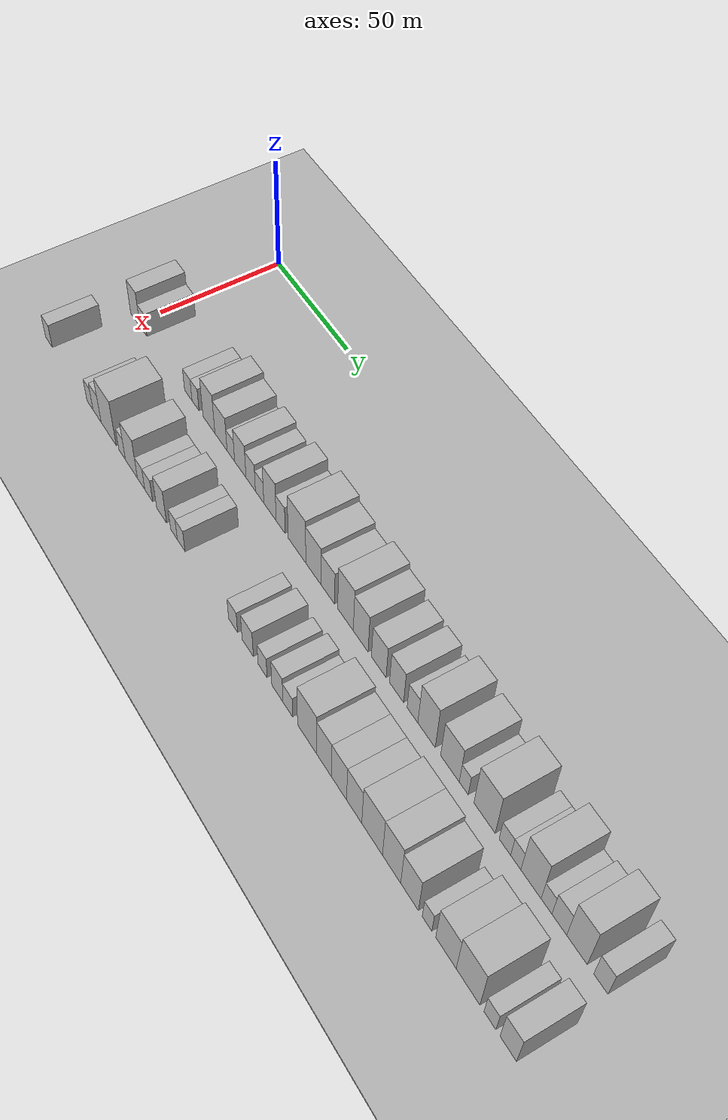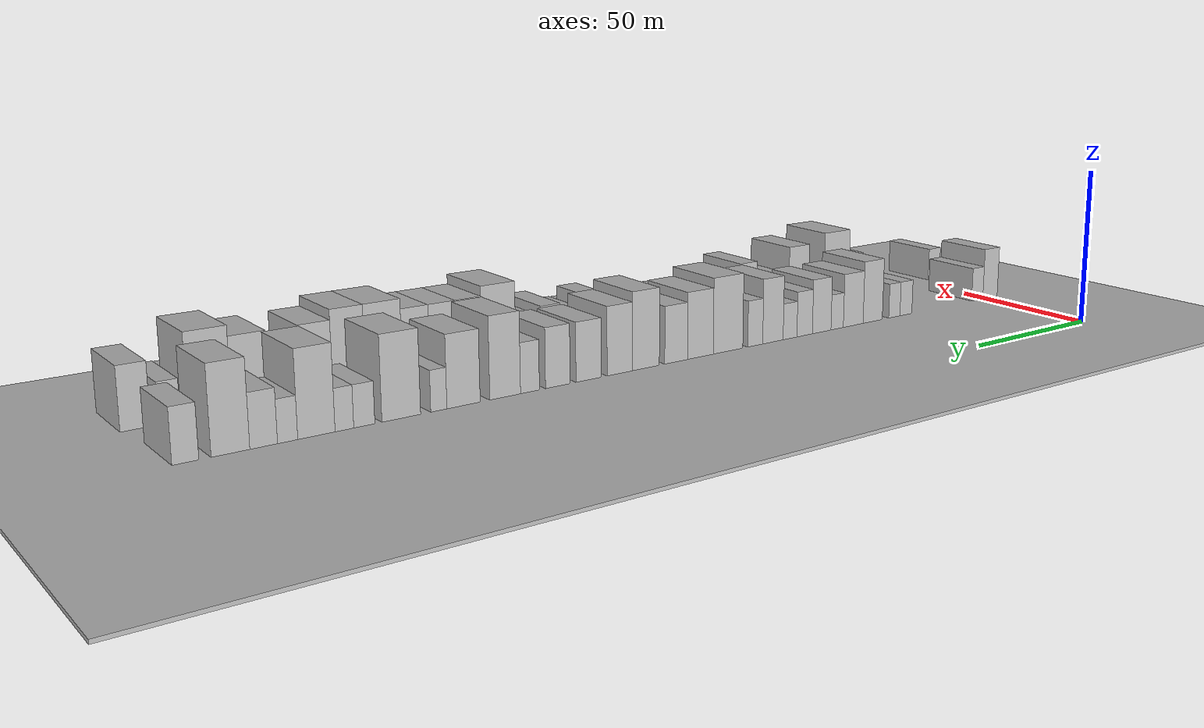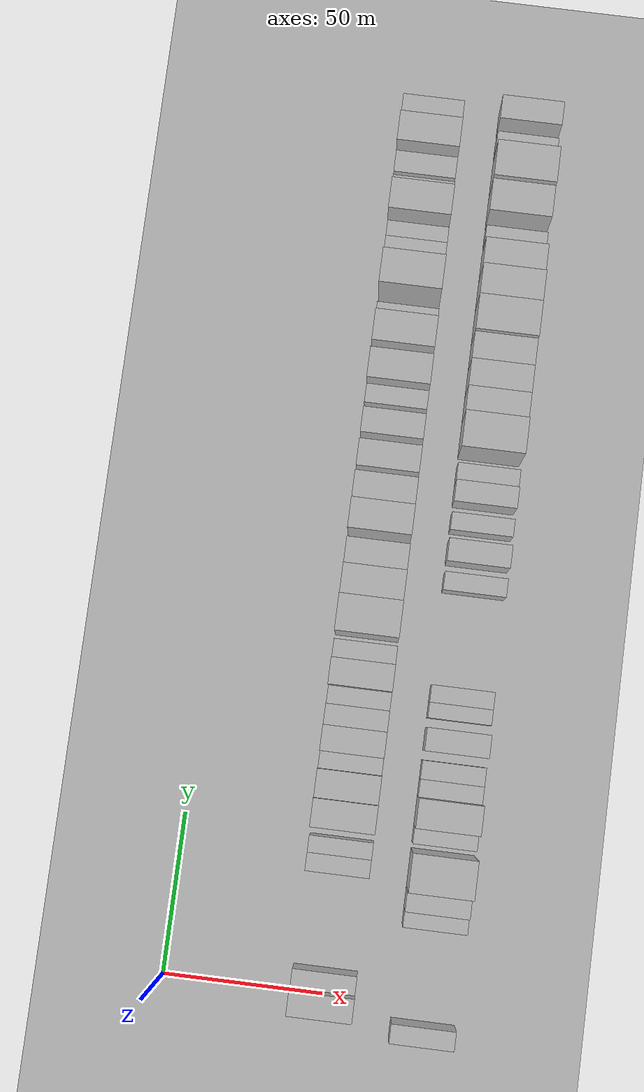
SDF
<sdf version="1.6">
 <world name="default">
  <include><name>ground_plane_1</name><uri>model://HANNAS_ground_plane</uri></include>
  <include>
   <name>ground_plane_2</name>
   <uri>model://HANNAS_ground_plane</uri>
   <pose>100 0 0  0 0 0</pose>
  </include>
  <model name="building_33">
   <static>1</static>
   <pose>50.0000 -1.3900 0 0.000000 0.000000 0.000000</pose>
   <link name="link">
    <pose>0 0 9.00 0 0 0</pose>
    <collision name="collision"><geometry><box><size>20.0000 7.4931 18.0000</size></box></geometry></collision>
    <visual name="visual">
     <cast_shadows>0</cast_shadows>
     <geometry><box><size>20.0000 7.4931 18.0000</size></box></geometry>
     <material>
      <script>
       <uri>model://HANNAS_wall/materials/scripts</uri>
       <uri>model://HANNAS_wall/materials/textures</uri>
       <name>vrc/HANNAS_wall</name>
      </script>
     </material>
    </visual>
   </link>
  </model>
  <model name="building_34">
   <static>1</static>
   <pose>50.0000 5.2241 0 0.000000 0.000000 0.000000</pose>
   <link name="link">
    <pose>0 0 6.00 0 0 0</pose>
    <collision name="collision"><geometry><box><size>20.0000 5.7352 12.0000</size></box></geometry></collision>
    <visual name="visual">
     <cast_shadows>0</cast_shadows>
     <geometry><box><size>20.0000 5.7352 12.0000</size></box></geometry>
     <material>
      <script>
       <uri>model://HANNAS_wall/materials/scripts</uri>
       <uri>model://HANNAS_wall/materials/textures</uri>
       <name>vrc/HANNAS_wall</name>
      </script>
     </material>
    </visual>
   </link>
  </model>
  <model name="building_35">
   <static>1</static>
   <pose>50.0000 40.5400 0 0.000000 0.000000 0.000000</pose>
   <link name="link">
    <pose>0 0 6.00 0 0 0</pose>
    <collision name="collision"><geometry><box><size>20.0000 5.6322 12.0000</size></box></geometry></collision>
    <visual name="visual">
     <cast_shadows>0</cast_shadows>
     <geometry><box><size>20.0000 5.6322 12.0000</size></box></geometry>
     <material>
      <script>
       <uri>model://HANNAS_wall/materials/scripts</uri>
       <uri>model://HANNAS_wall/materials/textures</uri>
       <name>vrc/HANNAS_wall</name>
      </script>
     </material>
    </visual>
   </link>
  </model>
  <model name="building_36">
   <static>1</static>
   <pose>50.0000 45.9921 0 0.000000 0.000000 0.000000</pose>
   <link name="link">
    <pose>0 0 6.00 0 0 0</pose>
    <collision name="collision"><geometry><box><size>20.0000 5.2721 12.0000</size></box></geometry></collision>
    <visual name="visual">
     <cast_shadows>0</cast_shadows>
     <geometry><box><size>20.0000 5.2721 12.0000</size></box></geometry>
     <material>
      <script>
       <uri>model://HANNAS_wall/materials/scripts</uri>
       <uri>model://HANNAS_wall/materials/textures</uri>
       <name>vrc/HANNAS_wall</name>
      </script>
     </material>
    </visual>
   </link>
  </model>
  <model name="building_37">
   <static>1</static>
   <pose>50.0000 56.0227 0 0.000000 0.000000 0.000000</pose>
   <link name="link">
    <pose>0 0 10.50 0 0 0</pose>
    <collision name="collision"><geometry><box><size>20.0000 8.7891 21.0000</size></box></geometry></collision>
    <visual name="visual">
     <cast_shadows>0</cast_shadows>
     <geometry><box><size>20.0000 8.7891 21.0000</size></box></geometry>
     <material>
      <script>
       <uri>model://HANNAS_wall/materials/scripts</uri>
       <uri>model://HANNAS_wall/materials/textures</uri>
       <name>vrc/HANNAS_wall</name>
      </script>
     </material>
    </visual>
   </link>
  </model>
  <model name="building_38">
   <static>1</static>
   <pose>50.0000 64.8491 0 0.000000 0.000000 0.000000</pose>
   <link name="link">
    <pose>0 0 9.00 0 0 0</pose>
    <collision name="collision"><geometry><box><size>20.0000 8.8636 18.0000</size></box></geometry></collision>
    <visual name="visual">
     <cast_shadows>0</cast_shadows>
     <geometry><box><size>20.0000 8.8636 18.0000</size></box></geometry>
     <material>
      <script>
       <uri>model://HANNAS_wall/materials/scripts</uri>
       <uri>model://HANNAS_wall/materials/textures</uri>
       <name>vrc/HANNAS_wall</name>
      </script>
     </material>
    </visual>
   </link>
  </model>
  <model name="building_39">
   <static>1</static>
   <pose>50.0000 71.9994 0 0.000000 0.000000 0.000000</pose>
   <link name="link">
    <pose>0 0 6.00 0 0 0</pose>
    <collision name="collision"><geometry><box><size>20.0000 5.4370 12.0000</size></box></geometry></collision>
    <visual name="visual">
     <cast_shadows>0</cast_shadows>
     <geometry><box><size>20.0000 5.4370 12.0000</size></box></geometry>
     <material>
      <script>
       <uri>model://HANNAS_wall/materials/scripts</uri>
       <uri>model://HANNAS_wall/materials/textures</uri>
       <name>vrc/HANNAS_wall</name>
      </script>
     </material>
    </visual>
   </link>
  </model>
  <model name="building_40">
   <static>1</static>
   <pose>50.0000 78.7575 0 0.000000 0.000000 0.000000</pose>
   <link name="link">
    <pose>0 0 9.00 0 0 0</pose>
    <collision name="collision"><geometry><box><size>20.0000 8.0791 18.0000</size></box></geometry></collision>
    <visual name="visual">
     <cast_shadows>0</cast_shadows>
     <geometry><box><size>20.0000 8.0791 18.0000</size></box></geometry>
     <material>
      <script>
       <uri>model://HANNAS_wall/materials/scripts</uri>
       <uri>model://HANNAS_wall/materials/textures</uri>
       <name>vrc/HANNAS_wall</name>
      </script>
     </material>
    </visual>
   </link>
  </model>
  <model name="building_41">
   <static>1</static>
   <pose>50.0000 86.0763 0 0.000000 0.000000 0.000000</pose>
   <link name="link">
    <pose>0 0 7.50 0 0 0</pose>
    <collision name="collision"><geometry><box><size>20.0000 6.5585 15.0000</size></box></geometry></collision>
    <visual name="visual">
     <cast_shadows>0</cast_shadows>
     <geometry><box><size>20.0000 6.5585 15.0000</size></box></geometry>
     <material>
      <script>
       <uri>model://HANNAS_wall/materials/scripts</uri>
       <uri>model://HANNAS_wall/materials/textures</uri>
       <name>vrc/HANNAS_wall</name>
      </script>
     </material>
    </visual>
   </link>
  </model>
  <model name="building_42">
   <static>1</static>
   <pose>50.0000 92.2538 0 0.000000 0.000000 0.000000</pose>
   <link name="link">
    <pose>0 0 6.00 0 0 0</pose>
    <collision name="collision"><geometry><box><size>20.0000 5.7967 12.0000</size></box></geometry></collision>
    <visual name="visual">
     <cast_shadows>0</cast_shadows>
     <geometry><box><size>20.0000 5.7967 12.0000</size></box></geometry>
     <material>
      <script>
       <uri>model://HANNAS_wall/materials/scripts</uri>
       <uri>model://HANNAS_wall/materials/textures</uri>
       <name>vrc/HANNAS_wall</name>
      </script>
     </material>
    </visual>
   </link>
  </model>
  <model name="building_43">
   <static>1</static>
   <pose>50.0000 99.3555 0 0.000000 0.000000 0.000000</pose>
   <link name="link">
    <pose>0 0 10.50 0 0 0</pose>
    <collision name="collision"><geometry><box><size>20.0000 8.4067 21.0000</size></box></geometry></collision>
    <visual name="visual">
     <cast_shadows>0</cast_shadows>
     <geometry><box><size>20.0000 8.4067 21.0000</size></box></geometry>
     <material>
      <script>
       <uri>model://HANNAS_wall/materials/scripts</uri>
       <uri>model://HANNAS_wall/materials/textures</uri>
       <name>vrc/HANNAS_wall</name>
      </script>
     </material>
    </visual>
   </link>
  </model>
  <model name="building_44">
   <static>1</static>
   <pose>50.0000 106.5774 0 0.000000 0.000000 0.000000</pose>
   <link name="link">
    <pose>0 0 7.50 0 0 0</pose>
    <collision name="collision"><geometry><box><size>20.0000 6.0372 15.0000</size></box></geometry></collision>
    <visual name="visual">
     <cast_shadows>0</cast_shadows>
     <geometry><box><size>20.0000 6.0372 15.0000</size></box></geometry>
     <material>
      <script>
       <uri>model://HANNAS_wall/materials/scripts</uri>
       <uri>model://HANNAS_wall/materials/textures</uri>
       <name>vrc/HANNAS_wall</name>
      </script>
     </material>
    </visual>
   </link>
  </model>
  <model name="building_45">
   <static>1</static>
   <pose>50.0000 117.4008 0 0.000000 0.000000 0.000000</pose>
   <link name="link">
    <pose>0 0 12.00 0 0 0</pose>
    <collision name="collision"><geometry><box><size>20.0000 11.6096 24.0000</size></box></geometry></collision>
    <visual name="visual">
     <cast_shadows>0</cast_shadows>
     <geometry><box><size>20.0000 11.6096 24.0000</size></box></geometry>
     <material>
      <script>
       <uri>model://HANNAS_wall/materials/scripts</uri>
       <uri>model://HANNAS_wall/materials/textures</uri>
       <name>vrc/HANNAS_wall</name>
      </script>
     </material>
    </visual>
   </link>
  </model>
  <model name="building_46">
   <static>1</static>
   <pose>50.0000 128.1020 0 0.000000 0.000000 0.000000</pose>
   <link name="link">
    <pose>0 0 10.50 0 0 0</pose>
    <collision name="collision"><geometry><box><size>20.0000 9.7929 21.0000</size></box></geometry></collision>
    <visual name="visual">
     <cast_shadows>0</cast_shadows>
     <geometry><box><size>20.0000 9.7929 21.0000</size></box></geometry>
     <material>
      <script>
       <uri>model://HANNAS_wall/materials/scripts</uri>
       <uri>model://HANNAS_wall/materials/textures</uri>
       <name>vrc/HANNAS_wall</name>
      </script>
     </material>
    </visual>
   </link>
  </model>
  <model name="building_47">
   <static>1</static>
   <pose>50.0000 137.2708 0 0.000000 0.000000 0.000000</pose>
   <link name="link">
    <pose>0 0 9.00 0 0 0</pose>
    <collision name="collision"><geometry><box><size>20.0000 8.5446 18.0000</size></box></geometry></collision>
    <visual name="visual">
     <cast_shadows>0</cast_shadows>
     <geometry><box><size>20.0000 8.5446 18.0000</size></box></geometry>
     <material>
      <script>
       <uri>model://HANNAS_wall/materials/scripts</uri>
       <uri>model://HANNAS_wall/materials/textures</uri>
       <name>vrc/HANNAS_wall</name>
      </script>
     </material>
    </visual>
   </link>
  </model>
  <model name="building_48">
   <static>1</static>
   <pose>50.0000 148.3784 0 0.000000 0.000000 0.000000</pose>
   <link name="link">
    <pose>0 0 12.00 0 0 0</pose>
    <collision name="collision"><geometry><box><size>20.0000 9.6707 24.0000</size></box></geometry></collision>
    <visual name="visual">
     <cast_shadows>0</cast_shadows>
     <geometry><box><size>20.0000 9.6707 24.0000</size></box></geometry>
     <material>
      <script>
       <uri>model://HANNAS_wall/materials/scripts</uri>
       <uri>model://HANNAS_wall/materials/textures</uri>
       <name>vrc/HANNAS_wall</name>
      </script>
     </material>
    </visual>
   </link>
  </model>
  <model name="building_49">
   <static>1</static>
   <pose>50.0000 157.7045 0 0.000000 0.000000 0.000000</pose>
   <link name="link">
    <pose>0 0 10.50 0 0 0</pose>
    <collision name="collision"><geometry><box><size>20.0000 8.9815 21.0000</size></box></geometry></collision>
    <visual name="visual">
     <cast_shadows>0</cast_shadows>
     <geometry><box><size>20.0000 8.9815 21.0000</size></box></geometry>
     <material>
      <script>
       <uri>model://HANNAS_wall/materials/scripts</uri>
       <uri>model://HANNAS_wall/materials/textures</uri>
       <name>vrc/HANNAS_wall</name>
      </script>
     </material>
    </visual>
   </link>
  </model>
  <model name="building_50">
   <static>1</static>
   <pose>50.0000 168.5529 0 0.000000 0.000000 0.000000</pose>
   <link name="link">
    <pose>0 0 9.00 0 0 0</pose>
    <collision name="collision"><geometry><box><size>20.0000 8.7153 18.0000</size></box></geometry></collision>
    <visual name="visual">
     <cast_shadows>0</cast_shadows>
     <geometry><box><size>20.0000 8.7153 18.0000</size></box></geometry>
     <material>
      <script>
       <uri>model://HANNAS_wall/materials/scripts</uri>
       <uri>model://HANNAS_wall/materials/textures</uri>
       <name>vrc/HANNAS_wall</name>
      </script>
     </material>
    </visual>
   </link>
  </model>
  <model name="building_51">
   <static>1</static>
   <pose>50.0000 179.0079 0 0.000000 0.000000 0.000000</pose>
   <link name="link">
    <pose>0 0 9.00 0 0 0</pose>
    <collision name="collision"><geometry><box><size>20.0000 8.1946 18.0000</size></box></geometry></collision>
    <visual name="visual">
     <cast_shadows>0</cast_shadows>
     <geometry><box><size>20.0000 8.1946 18.0000</size></box></geometry>
     <material>
      <script>
       <uri>model://HANNAS_wall/materials/scripts</uri>
       <uri>model://HANNAS_wall/materials/textures</uri>
       <name>vrc/HANNAS_wall</name>
      </script>
     </material>
    </visual>
   </link>
  </model>
  <model name="building_52">
   <static>1</static>
   <pose>50.0000 188.1663 0 0.000000 0.000000 0.000000</pose>
   <link name="link">
    <pose>0 0 7.50 0 0 0</pose>
    <collision name="collision"><geometry><box><size>20.0000 6.1223 15.0000</size></box></geometry></collision>
    <visual name="visual">
     <cast_shadows>0</cast_shadows>
     <geometry><box><size>20.0000 6.1223 15.0000</size></box></geometry>
     <material>
      <script>
       <uri>model://HANNAS_wall/materials/scripts</uri>
       <uri>model://HANNAS_wall/materials/textures</uri>
       <name>vrc/HANNAS_wall</name>
      </script>
     </material>
    </visual>
   </link>
  </model>
  <model name="building_53">
   <static>1</static>
   <pose>50.0000 196.1051 0 0.000000 0.000000 0.000000</pose>
   <link name="link">
    <pose>0 0 12.00 0 0 0</pose>
    <collision name="collision"><geometry><box><size>20.0000 9.7553 24.0000</size></box></geometry></collision>
    <visual name="visual">
     <cast_shadows>0</cast_shadows>
     <geometry><box><size>20.0000 9.7553 24.0000</size></box></geometry>
     <material>
      <script>
       <uri>model://HANNAS_wall/materials/scripts</uri>
       <uri>model://HANNAS_wall/materials/textures</uri>
       <name>vrc/HANNAS_wall</name>
      </script>
     </material>
    </visual>
   </link>
  </model>
  <model name="building_54">
   <static>1</static>
   <pose>50.0000 209.0655 0 0.000000 0.000000 0.000000</pose>
   <link name="link">
    <pose>0 0 10.50 0 0 0</pose>
    <collision name="collision"><geometry><box><size>20.0000 10.1656 21.0000</size></box></geometry></collision>
    <visual name="visual">
     <cast_shadows>0</cast_shadows>
     <geometry><box><size>20.0000 10.1656 21.0000</size></box></geometry>
     <material>
      <script>
       <uri>model://HANNAS_wall/materials/scripts</uri>
       <uri>model://HANNAS_wall/materials/textures</uri>
       <name>vrc/HANNAS_wall</name>
      </script>
     </material>
    </visual>
   </link>
  </model>
  <model name="building_55">
   <static>1</static>
   <pose>50.0000 216.5581 0 0.000000 0.000000 0.000000</pose>
   <link name="link">
    <pose>0 0 6.00 0 0 0</pose>
    <collision name="collision"><geometry><box><size>20.0000 4.8195 12.0000</size></box></geometry></collision>
    <visual name="visual">
     <cast_shadows>0</cast_shadows>
     <geometry><box><size>20.0000 4.8195 12.0000</size></box></geometry>
     <material>
      <script>
       <uri>model://HANNAS_wall/materials/scripts</uri>
       <uri>model://HANNAS_wall/materials/textures</uri>
       <name>vrc/HANNAS_wall</name>
      </script>
     </material>
    </visual>
   </link>
  </model>
  <model name="building_56">
   <static>1</static>
   <pose>50.0000 227.5670 0 0.000000 0.000000 0.000000</pose>
   <link name="link">
    <pose>0 0 12.00 0 0 0</pose>
    <collision name="collision"><geometry><box><size>20.0000 11.1984 24.0000</size></box></geometry></collision>
    <visual name="visual">
     <cast_shadows>0</cast_shadows>
     <geometry><box><size>20.0000 11.1984 24.0000</size></box></geometry>
     <material>
      <script>
       <uri>model://HANNAS_wall/materials/scripts</uri>
       <uri>model://HANNAS_wall/materials/textures</uri>
       <name>vrc/HANNAS_wall</name>
      </script>
     </material>
    </visual>
   </link>
  </model>
  <model name="building_57">
   <static>1</static>
   <pose>50.0000 238.1207 0 0.000000 0.000000 0.000000</pose>
   <link name="link">
    <pose>0 0 6.00 0 0 0</pose>
    <collision name="collision"><geometry><box><size>20.0000 5.9089 12.0000</size></box></geometry></collision>
    <visual name="visual">
     <cast_shadows>0</cast_shadows>
     <geometry><box><size>20.0000 5.9089 12.0000</size></box></geometry>
     <material>
      <script>
       <uri>model://HANNAS_wall/materials/scripts</uri>
       <uri>model://HANNAS_wall/materials/textures</uri>
       <name>vrc/HANNAS_wall</name>
      </script>
     </material>
    </visual>
   </link>
  </model>
  <model name="building_58">
   <static>1</static>
   <pose>50.0000 243.6410 0 0.000000 0.000000 0.000000</pose>
   <link name="link">
    <pose>0 0 6.00 0 0 0</pose>
    <collision name="collision"><geometry><box><size>20.0000 5.1318 12.0000</size></box></geometry></collision>
    <visual name="visual">
     <cast_shadows>0</cast_shadows>
     <geometry><box><size>20.0000 5.1318 12.0000</size></box></geometry>
     <material>
      <script>
       <uri>model://HANNAS_wall/materials/scripts</uri>
       <uri>model://HANNAS_wall/materials/textures</uri>
       <name>vrc/HANNAS_wall</name>
      </script>
     </material>
    </visual>
   </link>
  </model>
  <model name="building_59">
   <static>1</static>
   <pose>50.0000 251.2285 0 0.000000 0.000000 0.000000</pose>
   <link name="link">
    <pose>0 0 12.00 0 0 0</pose>
    <collision name="collision"><geometry><box><size>20.0000 10.0431 24.0000</size></box></geometry></collision>
    <visual name="visual">
     <cast_shadows>0</cast_shadows>
     <geometry><box><size>20.0000 10.0431 24.0000</size></box></geometry>
     <material>
      <script>
       <uri>model://HANNAS_wall/materials/scripts</uri>
       <uri>model://HANNAS_wall/materials/textures</uri>
       <name>vrc/HANNAS_wall</name>
      </script>
     </material>
    </visual>
   </link>
  </model>
  <model name="building_60">
   <static>1</static>
   <pose>50.0000 258.9044 0 0.000000 0.000000 0.000000</pose>
   <link name="link">
    <pose>0 0 6.00 0 0 0</pose>
    <collision name="collision"><geometry><box><size>20.0000 5.3088 12.0000</size></box></geometry></collision>
    <visual name="visual">
     <cast_shadows>0</cast_shadows>
     <geometry><box><size>20.0000 5.3088 12.0000</size></box></geometry>
     <material>
      <script>
       <uri>model://HANNAS_wall/materials/scripts</uri>
       <uri>model://HANNAS_wall/materials/textures</uri>
       <name>vrc/HANNAS_wall</name>
      </script>
     </material>
    </visual>
   </link>
  </model>
  <model name="building_61">
   <static>1</static>
   <pose>50.0000 265.1238 0 0.000000 0.000000 0.000000</pose>
   <link name="link">
    <pose>0 0 7.50 0 0 0</pose>
    <collision name="collision"><geometry><box><size>20.0000 7.1300 15.0000</size></box></geometry></collision>
    <visual name="visual">
     <cast_shadows>0</cast_shadows>
     <geometry><box><size>20.0000 7.1300 15.0000</size></box></geometry>
     <material>
      <script>
       <uri>model://HANNAS_wall/materials/scripts</uri>
       <uri>model://HANNAS_wall/materials/textures</uri>
       <name>vrc/HANNAS_wall</name>
      </script>
     </material>
    </visual>
   </link>
  </model>
  <model name="building_62">
   <static>1</static>
   <pose>50.0000 273.5439 0 0.000000 0.000000 0.000000</pose>
   <link name="link">
    <pose>0 0 12.00 0 0 0</pose>
    <collision name="collision"><geometry><box><size>20.0000 9.7103 24.0000</size></box></geometry></collision>
    <visual name="visual">
     <cast_shadows>0</cast_shadows>
     <geometry><box><size>20.0000 9.7103 24.0000</size></box></geometry>
     <material>
      <script>
       <uri>model://HANNAS_wall/materials/scripts</uri>
       <uri>model://HANNAS_wall/materials/textures</uri>
       <name>vrc/HANNAS_wall</name>
      </script>
     </material>
    </visual>
   </link>
  </model>
  <model name="building_63">
   <static>1</static>
   <pose>50.0000 284.6739 0 0.000000 0.000000 0.000000</pose>
   <link name="link">
    <pose>0 0 7.50 0 0 0</pose>
    <collision name="collision"><geometry><box><size>20.0000 6.5498 15.0000</size></box></geometry></collision>
    <visual name="visual">
     <cast_shadows>0</cast_shadows>
     <geometry><box><size>20.0000 6.5498 15.0000</size></box></geometry>
     <material>
      <script>
       <uri>model://HANNAS_wall/materials/scripts</uri>
       <uri>model://HANNAS_wall/materials/textures</uri>
       <name>vrc/HANNAS_wall</name>
      </script>
     </material>
    </visual>
   </link>
  </model>
  <model name="building_92">
   <static>1</static>
   <pose>82.0000 -7.4349 0 0.000000 0.000000 0.000000</pose>
   <link name="link">
    <pose>0 0 6.00 0 0 0</pose>
    <collision name="collision"><geometry><box><size>20.0000 5.8910 12.0000</size></box></geometry></collision>
    <visual name="visual">
     <cast_shadows>0</cast_shadows>
     <geometry><box><size>20.0000 5.8910 12.0000</size></box></geometry>
     <material>
      <script>
       <uri>model://HANNAS_wall/materials/scripts</uri>
       <uri>model://HANNAS_wall/materials/textures</uri>
       <name>vrc/HANNAS_wall</name>
      </script>
     </material>
    </visual>
   </link>
  </model>
  <model name="building_93">
   <static>1</static>
   <pose>82.0000 27.0017 0 0.000000 0.000000 0.000000</pose>
   <link name="link">
    <pose>0 0 6.00 0 0 0</pose>
    <collision name="collision"><geometry><box><size>20.0000 4.9941 12.0000</size></box></geometry></collision>
    <visual name="visual">
     <cast_shadows>0</cast_shadows>
     <geometry><box><size>20.0000 4.9941 12.0000</size></box></geometry>
     <material>
      <script>
       <uri>model://HANNAS_wall/materials/scripts</uri>
       <uri>model://HANNAS_wall/materials/textures</uri>
       <name>vrc/HANNAS_wall</name>
      </script>
     </material>
    </visual>
   </link>
  </model>
  <model name="building_94">
   <static>1</static>
   <pose>82.0000 32.7926 0 0.000000 0.000000 0.000000</pose>
   <link name="link">
    <pose>0 0 7.50 0 0 0</pose>
    <collision name="collision"><geometry><box><size>20.0000 6.5878 15.0000</size></box></geometry></collision>
    <visual name="visual">
     <cast_shadows>0</cast_shadows>
     <geometry><box><size>20.0000 6.5878 15.0000</size></box></geometry>
     <material>
      <script>
       <uri>model://HANNAS_wall/materials/scripts</uri>
       <uri>model://HANNAS_wall/materials/textures</uri>
       <name>vrc/HANNAS_wall</name>
      </script>
     </material>
    </visual>
   </link>
  </model>
  <model name="building_95">
   <static>1</static>
   <pose>82.0000 42.0146 0 0.000000 0.000000 0.000000</pose>
   <link name="link">
    <pose>0 0 12.00 0 0 0</pose>
    <collision name="collision"><geometry><box><size>20.0000 11.8562 24.0000</size></box></geometry></collision>
    <visual name="visual">
     <cast_shadows>0</cast_shadows>
     <geometry><box><size>20.0000 11.8562 24.0000</size></box></geometry>
     <material>
      <script>
       <uri>model://HANNAS_wall/materials/scripts</uri>
       <uri>model://HANNAS_wall/materials/textures</uri>
       <name>vrc/HANNAS_wall</name>
      </script>
     </material>
    </visual>
   </link>
  </model>
  <model name="building_96">
   <static>1</static>
   <pose>82.0000 52.5281 0 0.000000 0.000000 0.000000</pose>
   <link name="link">
    <pose>0 0 6.00 0 0 0</pose>
    <collision name="collision"><geometry><box><size>20.0000 5.1706 12.0000</size></box></geometry></collision>
    <visual name="visual">
     <cast_shadows>0</cast_shadows>
     <geometry><box><size>20.0000 5.1706 12.0000</size></box></geometry>
     <material>
      <script>
       <uri>model://HANNAS_wall/materials/scripts</uri>
       <uri>model://HANNAS_wall/materials/textures</uri>
       <name>vrc/HANNAS_wall</name>
      </script>
     </material>
    </visual>
   </link>
  </model>
  <model name="building_97">
   <static>1</static>
   <pose>82.0000 59.6885 0 0.000000 0.000000 0.000000</pose>
   <link name="link">
    <pose>0 0 10.50 0 0 0</pose>
    <collision name="collision"><geometry><box><size>20.0000 9.1502 21.0000</size></box></geometry></collision>
    <visual name="visual">
     <cast_shadows>0</cast_shadows>
     <geometry><box><size>20.0000 9.1502 21.0000</size></box></geometry>
     <material>
      <script>
       <uri>model://HANNAS_wall/materials/scripts</uri>
       <uri>model://HANNAS_wall/materials/textures</uri>
       <name>vrc/HANNAS_wall</name>
      </script>
     </material>
    </visual>
   </link>
  </model>
  <model name="building_98">
   <static>1</static>
   <pose>82.0000 67.0391 0 0.000000 0.000000 0.000000</pose>
   <link name="link">
    <pose>0 0 6.00 0 0 0</pose>
    <collision name="collision"><geometry><box><size>20.0000 5.5510 12.0000</size></box></geometry></collision>
    <visual name="visual">
     <cast_shadows>0</cast_shadows>
     <geometry><box><size>20.0000 5.5510 12.0000</size></box></geometry>
     <material>
      <script>
       <uri>model://HANNAS_wall/materials/scripts</uri>
       <uri>model://HANNAS_wall/materials/textures</uri>
       <name>vrc/HANNAS_wall</name>
      </script>
     </material>
    </visual>
   </link>
  </model>
  <model name="building_99">
   <static>1</static>
   <pose>82.0000 72.7305 0 0.000000 0.000000 0.000000</pose>
   <link name="link">
    <pose>0 0 6.00 0 0 0</pose>
    <collision name="collision"><geometry><box><size>20.0000 5.8318 12.0000</size></box></geometry></collision>
    <visual name="visual">
     <cast_shadows>0</cast_shadows>
     <geometry><box><size>20.0000 5.8318 12.0000</size></box></geometry>
     <material>
      <script>
       <uri>model://HANNAS_wall/materials/scripts</uri>
       <uri>model://HANNAS_wall/materials/textures</uri>
       <name>vrc/HANNAS_wall</name>
      </script>
     </material>
    </visual>
   </link>
  </model>
  <model name="building_100">
   <static>1</static>
   <pose>82.0000 82.2524 0 0.000000 0.000000 0.000000</pose>
   <link name="link">
    <pose>0 0 9.00 0 0 0</pose>
    <collision name="collision"><geometry><box><size>20.0000 7.2120 18.0000</size></box></geometry></collision>
    <visual name="visual">
     <cast_shadows>0</cast_shadows>
     <geometry><box><size>20.0000 7.2120 18.0000</size></box></geometry>
     <material>
      <script>
       <uri>model://HANNAS_wall/materials/scripts</uri>
       <uri>model://HANNAS_wall/materials/textures</uri>
       <name>vrc/HANNAS_wall</name>
      </script>
     </material>
    </visual>
   </link>
  </model>
  <model name="building_101">
   <static>1</static>
   <pose>82.0000 91.2941 0 0.000000 0.000000 0.000000</pose>
   <link name="link">
    <pose>0 0 6.00 0 0 0</pose>
    <collision name="collision"><geometry><box><size>20.0000 4.8713 12.0000</size></box></geometry></collision>
    <visual name="visual">
     <cast_shadows>0</cast_shadows>
     <geometry><box><size>20.0000 4.8713 12.0000</size></box></geometry>
     <material>
      <script>
       <uri>model://HANNAS_wall/materials/scripts</uri>
       <uri>model://HANNAS_wall/materials/textures</uri>
       <name>vrc/HANNAS_wall</name>
      </script>
     </material>
    </visual>
   </link>
  </model>
  <model name="building_102">
   <static>1</static>
   <pose>82.0000 96.4805 0 0.000000 0.000000 0.000000</pose>
   <link name="link">
    <pose>0 0 6.00 0 0 0</pose>
    <collision name="collision"><geometry><box><size>20.0000 5.5016 12.0000</size></box></geometry></collision>
    <visual name="visual">
     <cast_shadows>0</cast_shadows>
     <geometry><box><size>20.0000 5.5016 12.0000</size></box></geometry>
     <material>
      <script>
       <uri>model://HANNAS_wall/materials/scripts</uri>
       <uri>model://HANNAS_wall/materials/textures</uri>
       <name>vrc/HANNAS_wall</name>
      </script>
     </material>
    </visual>
   </link>
  </model>
  <model name="building_103">
   <static>1</static>
   <pose>82.0000 132.1444 0 0.000000 0.000000 0.000000</pose>
   <link name="link">
    <pose>0 0 6.00 0 0 0</pose>
    <collision name="collision"><geometry><box><size>20.0000 5.9420 12.0000</size></box></geometry></collision>
    <visual name="visual">
     <cast_shadows>0</cast_shadows>
     <geometry><box><size>20.0000 5.9420 12.0000</size></box></geometry>
     <material>
      <script>
       <uri>model://HANNAS_wall/materials/scripts</uri>
       <uri>model://HANNAS_wall/materials/textures</uri>
       <name>vrc/HANNAS_wall</name>
      </script>
     </material>
    </visual>
   </link>
  </model>
  <model name="building_104">
   <static>1</static>
   <pose>82.0000 141.7778 0 0.000000 0.000000 0.000000</pose>
   <link name="link">
    <pose>0 0 7.50 0 0 0</pose>
    <collision name="collision"><geometry><box><size>20.0000 7.3248 15.0000</size></box></geometry></collision>
    <visual name="visual">
     <cast_shadows>0</cast_shadows>
     <geometry><box><size>20.0000 7.3248 15.0000</size></box></geometry>
     <material>
      <script>
       <uri>model://HANNAS_wall/materials/scripts</uri>
       <uri>model://HANNAS_wall/materials/textures</uri>
       <name>vrc/HANNAS_wall</name>
      </script>
     </material>
    </visual>
   </link>
  </model>
  <model name="building_105">
   <static>1</static>
   <pose>82.0000 151.3095 0 0.000000 0.000000 0.000000</pose>
   <link name="link">
    <pose>0 0 6.00 0 0 0</pose>
    <collision name="collision"><geometry><box><size>20.0000 5.7386 12.0000</size></box></geometry></collision>
    <visual name="visual">
     <cast_shadows>0</cast_shadows>
     <geometry><box><size>20.0000 5.7386 12.0000</size></box></geometry>
     <material>
      <script>
       <uri>model://HANNAS_wall/materials/scripts</uri>
       <uri>model://HANNAS_wall/materials/textures</uri>
       <name>vrc/HANNAS_wall</name>
      </script>
     </material>
    </visual>
   </link>
  </model>
  <model name="building_106">
   <static>1</static>
   <pose>82.0000 160.6580 0 0.000000 0.000000 0.000000</pose>
   <link name="link">
    <pose>0 0 7.50 0 0 0</pose>
    <collision name="collision"><geometry><box><size>20.0000 6.9584 15.0000</size></box></geometry></collision>
    <visual name="visual">
     <cast_shadows>0</cast_shadows>
     <geometry><box><size>20.0000 6.9584 15.0000</size></box></geometry>
     <material>
      <script>
       <uri>model://HANNAS_wall/materials/scripts</uri>
       <uri>model://HANNAS_wall/materials/textures</uri>
       <name>vrc/HANNAS_wall</name>
      </script>
     </material>
    </visual>
   </link>
  </model>
  <model name="building_107">
   <static>1</static>
   <pose>82.0000 167.1351 0 0.000000 0.000000 0.000000</pose>
   <link name="link">
    <pose>0 0 6.00 0 0 0</pose>
    <collision name="collision"><geometry><box><size>20.0000 5.9958 12.0000</size></box></geometry></collision>
    <visual name="visual">
     <cast_shadows>0</cast_shadows>
     <geometry><box><size>20.0000 5.9958 12.0000</size></box></geometry>
     <material>
      <script>
       <uri>model://HANNAS_wall/materials/scripts</uri>
       <uri>model://HANNAS_wall/materials/textures</uri>
       <name>vrc/HANNAS_wall</name>
      </script>
     </material>
    </visual>
   </link>
  </model>
  <model name="building_108">
   <static>1</static>
   <pose>82.0000 178.9195 0 0.000000 0.000000 0.000000</pose>
   <link name="link">
    <pose>0 0 12.00 0 0 0</pose>
    <collision name="collision"><geometry><box><size>20.0000 11.5729 24.0000</size></box></geometry></collision>
    <visual name="visual">
     <cast_shadows>0</cast_shadows>
     <geometry><box><size>20.0000 11.5729 24.0000</size></box></geometry>
     <material>
      <script>
       <uri>model://HANNAS_wall/materials/scripts</uri>
       <uri>model://HANNAS_wall/materials/textures</uri>
       <name>vrc/HANNAS_wall</name>
      </script>
     </material>
    </visual>
   </link>
  </model>
  <model name="building_109">
   <static>1</static>
   <pose>82.0000 188.9908 0 0.000000 0.000000 0.000000</pose>
   <link name="link">
    <pose>0 0 10.50 0 0 0</pose>
    <collision name="collision"><geometry><box><size>20.0000 8.5698 21.0000</size></box></geometry></collision>
    <visual name="visual">
     <cast_shadows>0</cast_shadows>
     <geometry><box><size>20.0000 8.5698 21.0000</size></box></geometry>
     <material>
      <script>
       <uri>model://HANNAS_wall/materials/scripts</uri>
       <uri>model://HANNAS_wall/materials/textures</uri>
       <name>vrc/HANNAS_wall</name>
      </script>
     </material>
    </visual>
   </link>
  </model>
  <model name="building_110">
   <static>1</static>
   <pose>82.0000 197.6763 0 0.000000 0.000000 0.000000</pose>
   <link name="link">
    <pose>0 0 10.50 0 0 0</pose>
    <collision name="collision"><geometry><box><size>20.0000 8.8012 21.0000</size></box></geometry></collision>
    <visual name="visual">
     <cast_shadows>0</cast_shadows>
     <geometry><box><size>20.0000 8.8012 21.0000</size></box></geometry>
     <material>
      <script>
       <uri>model://HANNAS_wall/materials/scripts</uri>
       <uri>model://HANNAS_wall/materials/textures</uri>
       <name>vrc/HANNAS_wall</name>
      </script>
     </material>
    </visual>
   </link>
  </model>
  <model name="building_111">
   <static>1</static>
   <pose>82.0000 206.4174 0 0.000000 0.000000 0.000000</pose>
   <link name="link">
    <pose>0 0 10.50 0 0 0</pose>
    <collision name="collision"><geometry><box><size>20.0000 8.6809 21.0000</size></box></geometry></collision>
    <visual name="visual">
     <cast_shadows>0</cast_shadows>
     <geometry><box><size>20.0000 8.6809 21.0000</size></box></geometry>
     <material>
      <script>
       <uri>model://HANNAS_wall/materials/scripts</uri>
       <uri>model://HANNAS_wall/materials/textures</uri>
       <name>vrc/HANNAS_wall</name>
      </script>
     </material>
    </visual>
   </link>
  </model>
  <model name="building_112">
   <static>1</static>
   <pose>82.0000 216.5007 0 0.000000 0.000000 0.000000</pose>
   <link name="link">
    <pose>0 0 12.00 0 0 0</pose>
    <collision name="collision"><geometry><box><size>20.0000 11.4856 24.0000</size></box></geometry></collision>
    <visual name="visual">
     <cast_shadows>0</cast_shadows>
     <geometry><box><size>20.0000 11.4856 24.0000</size></box></geometry>
     <material>
      <script>
       <uri>model://HANNAS_wall/materials/scripts</uri>
       <uri>model://HANNAS_wall/materials/textures</uri>
       <name>vrc/HANNAS_wall</name>
      </script>
     </material>
    </visual>
   </link>
  </model>
  <model name="building_113">
   <static>1</static>
   <pose>82.0000 227.1859 0 0.000000 0.000000 0.000000</pose>
   <link name="link">
    <pose>0 0 12.00 0 0 0</pose>
    <collision name="collision"><geometry><box><size>20.0000 9.8849 24.0000</size></box></geometry></collision>
    <visual name="visual">
     <cast_shadows>0</cast_shadows>
     <geometry><box><size>20.0000 9.8849 24.0000</size></box></geometry>
     <material>
      <script>
       <uri>model://HANNAS_wall/materials/scripts</uri>
       <uri>model://HANNAS_wall/materials/textures</uri>
       <name>vrc/HANNAS_wall</name>
      </script>
     </material>
    </visual>
   </link>
  </model>
  <model name="building_114">
   <static>1</static>
   <pose>82.0000 236.8437 0 0.000000 0.000000 0.000000</pose>
   <link name="link">
    <pose>0 0 10.50 0 0 0</pose>
    <collision name="collision"><geometry><box><size>20.0000 9.4306 21.0000</size></box></geometry></collision>
    <visual name="visual">
     <cast_shadows>0</cast_shadows>
     <geometry><box><size>20.0000 9.4306 21.0000</size></box></geometry>
     <material>
      <script>
       <uri>model://HANNAS_wall/materials/scripts</uri>
       <uri>model://HANNAS_wall/materials/textures</uri>
       <name>vrc/HANNAS_wall</name>
      </script>
     </material>
    </visual>
   </link>
  </model>
  <model name="building_115">
   <static>1</static>
   <pose>82.0000 246.0511 0 0.000000 0.000000 0.000000</pose>
   <link name="link">
    <pose>0 0 6.00 0 0 0</pose>
    <collision name="collision"><geometry><box><size>20.0000 4.9843 12.0000</size></box></geometry></collision>
    <visual name="visual">
     <cast_shadows>0</cast_shadows>
     <geometry><box><size>20.0000 4.9843 12.0000</size></box></geometry>
     <material>
      <script>
       <uri>model://HANNAS_wall/materials/scripts</uri>
       <uri>model://HANNAS_wall/materials/textures</uri>
       <name>vrc/HANNAS_wall</name>
      </script>
     </material>
    </visual>
   </link>
  </model>
  <model name="building_116">
   <static>1</static>
   <pose>82.0000 255.7525 0 0.000000 0.000000 0.000000</pose>
   <link name="link">
    <pose>0 0 10.50 0 0 0</pose>
    <collision name="collision"><geometry><box><size>20.0000 10.4185 21.0000</size></box></geometry></collision>
    <visual name="visual">
     <cast_shadows>0</cast_shadows>
     <geometry><box><size>20.0000 10.4185 21.0000</size></box></geometry>
     <material>
      <script>
       <uri>model://HANNAS_wall/materials/scripts</uri>
       <uri>model://HANNAS_wall/materials/textures</uri>
       <name>vrc/HANNAS_wall</name>
      </script>
     </material>
    </visual>
   </link>
  </model>
  <model name="building_117">
   <static>1</static>
   <pose>82.0000 266.8261 0 0.000000 0.000000 0.000000</pose>
   <link name="link">
    <pose>0 0 12.00 0 0 0</pose>
    <collision name="collision"><geometry><box><size>20.0000 11.7287 24.0000</size></box></geometry></collision>
    <visual name="visual">
     <cast_shadows>0</cast_shadows>
     <geometry><box><size>20.0000 11.7287 24.0000</size></box></geometry>
     <material>
      <script>
       <uri>model://HANNAS_wall/materials/scripts</uri>
       <uri>model://HANNAS_wall/materials/textures</uri>
       <name>vrc/HANNAS_wall</name>
      </script>
     </material>
    </visual>
   </link>
  </model>
  <model name="building_118">
   <static>1</static>
   <pose>82.0000 277.5507 0 0.000000 0.000000 0.000000</pose>
   <link name="link">
    <pose>0 0 6.00 0 0 0</pose>
    <collision name="collision"><geometry><box><size>20.0000 5.7204 12.0000</size></box></geometry></collision>
    <visual name="visual">
     <cast_shadows>0</cast_shadows>
     <geometry><box><size>20.0000 5.7204 12.0000</size></box></geometry>
     <material>
      <script>
       <uri>model://HANNAS_wall/materials/scripts</uri>
       <uri>model://HANNAS_wall/materials/textures</uri>
       <name>vrc/HANNAS_wall</name>
      </script>
     </material>
    </visual>
   </link>
  </model>
  <model name="building_119">
   <static>1</static>
   <pose>82.0000 286.3182 0 0.000000 0.000000 0.000000</pose>
   <link name="link">
    <pose>0 0 9.00 0 0 0</pose>
    <collision name="collision"><geometry><box><size>20.0000 7.8145 18.0000</size></box></geometry></collision>
    <visual name="visual">
     <cast_shadows>0</cast_shadows>
     <geometry><box><size>20.0000 7.8145 18.0000</size></box></geometry>
     <material>
      <script>
       <uri>model://HANNAS_wall/materials/scripts</uri>
       <uri>model://HANNAS_wall/materials/textures</uri>
       <name>vrc/HANNAS_wall</name>
      </script>
     </material>
    </visual>
   </link>
  </model>
 </world>
</sdf>
